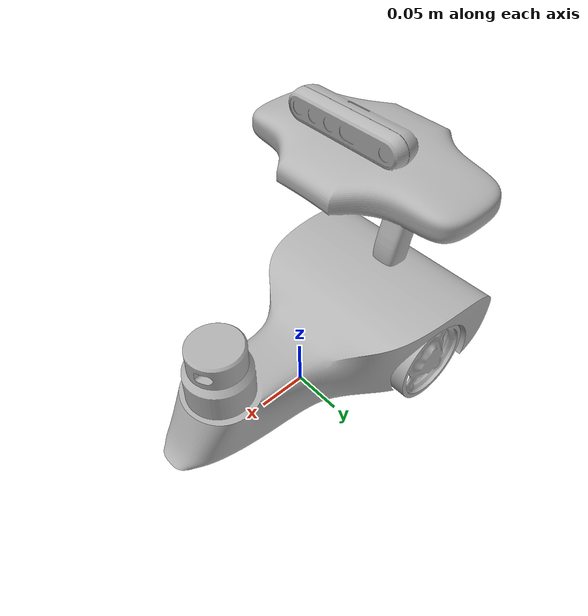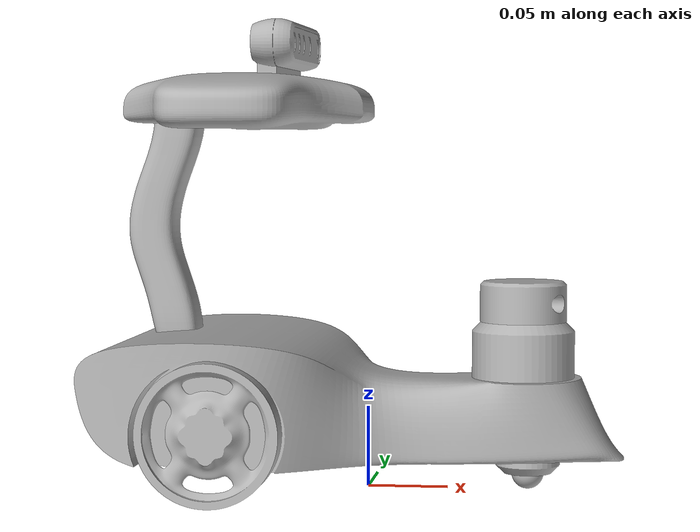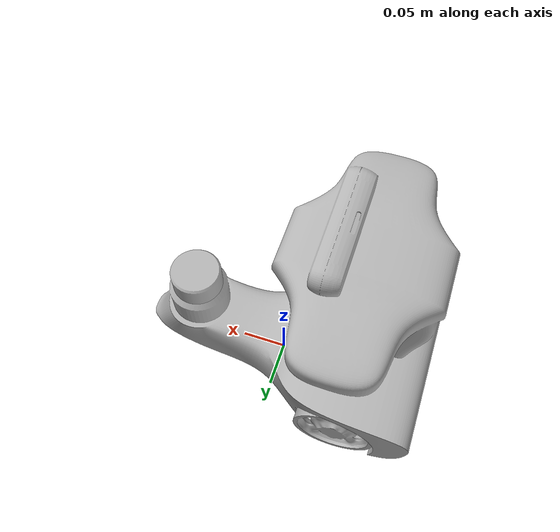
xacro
<?xml version="1.0" ?>
<robot name="ros_rath" xmlns:xacro="http://www.ros.org/wiki/xacro">

<xacro:include filename="$(find ros_rath_description)/urdf/materials.xacro" />
<xacro:include filename="$(find ros_rath_description)/urdf/ros_rath.trans" />
<xacro:include filename="$(find ros_rath_description)/urdf/ros_rath.gazebo" />
<xacro:include filename="$(find ros_rath_description)/urdf/example_gazebo.xacro" />

<link name="base_link">
  <inertial>
    <origin xyz="-0.05351120705226561 0.0022242446765815393 0.09983654253164718" rpy="0 0 0"/>
    <mass value="3.4990277858908225"/>
    <inertia ixx="0.029248" iyy="0.04088" izz="0.026645" ixy="0.0" iyz="-1e-06" ixz="0.004617"/>
  </inertial>
  <visual>
    <origin xyz="0 0 0" rpy="0 0 0"/>
    <geometry>
      <mesh filename="file://$(find ros_rath_description)/meshes/base_link.stl" scale="0.001 0.001 0.001"/>
    </geometry>
    <material name="silver"/>
  </visual>
  <collision>
    <origin xyz="0 0 0" rpy="0 0 0"/>
    <geometry>
      <mesh filename="file://$(find ros_rath_description)/meshes/base_link.stl" scale="0.001 0.001 0.001"/>
    </geometry>
  </collision>
</link>

<link name="rw_1">
  <inertial>
    <origin xyz="1.3572735907407818e-08 -0.007429906824178961 7.703107097328799e-08" rpy="0 0 0"/>
    <mass value="0.04673002592203319"/>
    <inertia ixx="2.4e-05" iyy="4.5e-05" izz="2.3e-05" ixy="0.0" iyz="0.0" ixz="0.0"/>
  </inertial>
  <visual>
    <origin xyz="0.086 0.077777 -0.042876" rpy="0 0 0"/>
    <geometry>
      <mesh filename="file://$(find ros_rath_description)/meshes/rw_1.stl" scale="0.001 0.001 0.001"/>
    </geometry>
    <material name="silver"/>
  </visual>
  <collision>
    <origin xyz="0.086 0.077777 -0.042876" rpy="0 0 0"/>
    <geometry>
      <mesh filename="file://$(find ros_rath_description)/meshes/rw_1.stl" scale="0.001 0.001 0.001"/>
    </geometry>
  </collision>
</link>

<link name="lw_1">
  <inertial>
    <origin xyz="-1.6812944092503557e-08 0.00742982132393516 4.719616154141848e-08" rpy="0 0 0"/>
    <mass value="0.04673015906170595"/>
    <inertia ixx="2.4e-05" iyy="4.5e-05" izz="2.3e-05" ixy="0.0" iyz="-0.0" ixz="0.0"/>
  </inertial>
  <visual>
    <origin xyz="0.086 -0.082223 -0.042876" rpy="0 0 0"/>
    <geometry>
      <mesh filename="file://$(find ros_rath_description)/meshes/lw_1.stl" scale="0.001 0.001 0.001"/>
    </geometry>
    <material name="silver"/>
  </visual>
  <collision>
    <origin xyz="0.086 -0.082223 -0.042876" rpy="0 0 0"/>
    <geometry>
      <mesh filename="file://$(find ros_rath_description)/meshes/lw_1.stl" scale="0.001 0.001 0.001"/>
    </geometry>
  </collision>
</link>

<link name="lidar_1">
  <inertial>
    <origin xyz="-0.000879780527735588 -9.045063808073902e-05 0.012460994735723943" rpy="0 0 0"/>
    <mass value="0.08892684105064558"/>
    <inertia ixx="2.1e-05" iyy="2e-05" izz="3.2e-05" ixy="0.0" iyz="-0.0" ixz="-0.0"/>
  </inertial>
  <visual>
    <origin xyz="-0.097 -0.002223 -0.104876" rpy="0 0 0"/>
    <geometry>
      <mesh filename="file://$(find ros_rath_description)/meshes/lidar_1.stl" scale="0.001 0.001 0.001"/>
    </geometry>
    <material name="silver"/>
  </visual>
  <collision>
    <origin xyz="-0.097 -0.002223 -0.104876" rpy="0 0 0"/>
    <geometry>
      <mesh filename="file://$(find ros_rath_description)/meshes/lidar_1.stl" scale="0.001 0.001 0.001"/>
    </geometry>
  </collision>
</link>

<link name="caster_1">
  <inertial>
    <origin xyz="-6.273731534278681e-13 -4.0643030239928546e-08 -0.008499922628011804" rpy="0 0 0"/>
    <mass value="0.04110250388446592"/>
    <inertia ixx="2e-06" iyy="2e-06" izz="2e-06" ixy="0.0" iyz="0.0" ixz="0.0"/>
  </inertial>
  <visual>
    <origin xyz="-0.1 -0.002223 -0.019876" rpy="0 0 0"/>
    <geometry>
      <mesh filename="file://$(find ros_rath_description)/meshes/caster_1.stl" scale="0.001 0.001 0.001"/>
    </geometry>
    <material name="silver"/>
  </visual>
  <collision>
    <origin xyz="-0.1 -0.002223 -0.019876" rpy="0 0 0"/>
    <geometry>
      <mesh filename="file://$(find ros_rath_description)/meshes/caster_1.stl" scale="0.001 0.001 0.001"/>
    </geometry>
  </collision>
</link>

<joint name="right_wheel_joint" type="continuous">
  <origin xyz="-0.086 -0.077777 0.042876" rpy="0 0 0"/>
  <parent link="base_link"/>
  <child link="rw_1"/>
  <axis xyz="0.0 1.0 0.0"/>
</joint>

<joint name="left_wheel_joint" type="continuous">
  <origin xyz="-0.086 0.082223 0.042876" rpy="0 0 0"/>
  <parent link="base_link"/>
  <child link="lw_1"/>
  <axis xyz="0.0 1.0 0.0"/>
</joint>

<joint name="lidar_rotation" type="fixed">
  <origin xyz="0.097 0.002223 0.104876" rpy="0 0 0"/>
  <parent link="base_link"/>
  <child link="lidar_1"/>
</joint>

<joint name="caster_joint" type="fixed">
  <origin xyz="0.1 0.002223 0.019876" rpy="0 0 0"/>
  <parent link="base_link"/>
  <child link="caster_1"/>
</joint>

</robot>

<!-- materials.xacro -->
<robot name="ros_rath" xmlns:xacro="http://www.ros.org/wiki/xacro" >

<material name="silver">
  <color rgba="0.700 0.700 0.700 1.000"/>
</material>

</robot>

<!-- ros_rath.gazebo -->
<robot name="ros_rath" xmlns:xacro="http://www.ros.org/wiki/xacro" >

<xacro:property name="body_color" value="Gazebo/Silver" />

<gazebo>
  <plugin name="control" filename="libgazebo_ros_control.so"/>
</gazebo>

<gazebo reference="base_link">
  <material>${body_color}</material>
  <mu1>0.2</mu1>
  <mu2>0.2</mu2>
  <self_collide>true</self_collide>
  <gravity>true</gravity>
</gazebo>

<gazebo reference="rw_1">
  <material>Gazebo/Black</material>
  <mu1>0.2</mu1>
  <mu2>0.2</mu2>
  <self_collide>true</self_collide>
</gazebo>

<gazebo reference="lw_1">
  <material>Gazebo/Black</material>
  <mu1>0.2</mu1>
  <mu2>0.2</mu2>
  <self_collide>true</self_collide>
</gazebo>

<gazebo reference="lidar_1">
  <material>${body_color}</material>
  <mu1>0.2</mu1>
  <mu2>0.2</mu2>
  <self_collide>true</self_collide>
</gazebo>

<gazebo reference="caster_1">
  <material>${body_color}</material>
  <mu1>0.2</mu1>
  <mu2>0.2</mu2>
  <self_collide>true</self_collide>
</gazebo>

<!-- Differential drive plugin -->
  <gazebo>
    <plugin name="differential_drive_controller" filename="libgazebo_ros_diff_drive.so">
      <robotNamespace>/ros_rath</robotNamespace>
      <alwaysOn>true</alwaysOn>
      <updateRate>100</updateRate>

      <!-- Wheel Information -->
      <left_joint>left_wheel_joint</left_joint>
      <right_joint>right_wheel_joint</right_joint>
      <wheel_separation>0.2</wheel_separation>
      <wheel_diameter>0.1</wheel_diameter>
      <torque>5.0</torque>
      <command_topic>cmd_vel</command_topic>
      <odometry_topic>odom</odometry_topic>
      <odometry_frame>odom</odometry_frame>
      <robot_base_frame>base_link</robot_base_frame>
    </plugin>
  </gazebo>

</robot>
